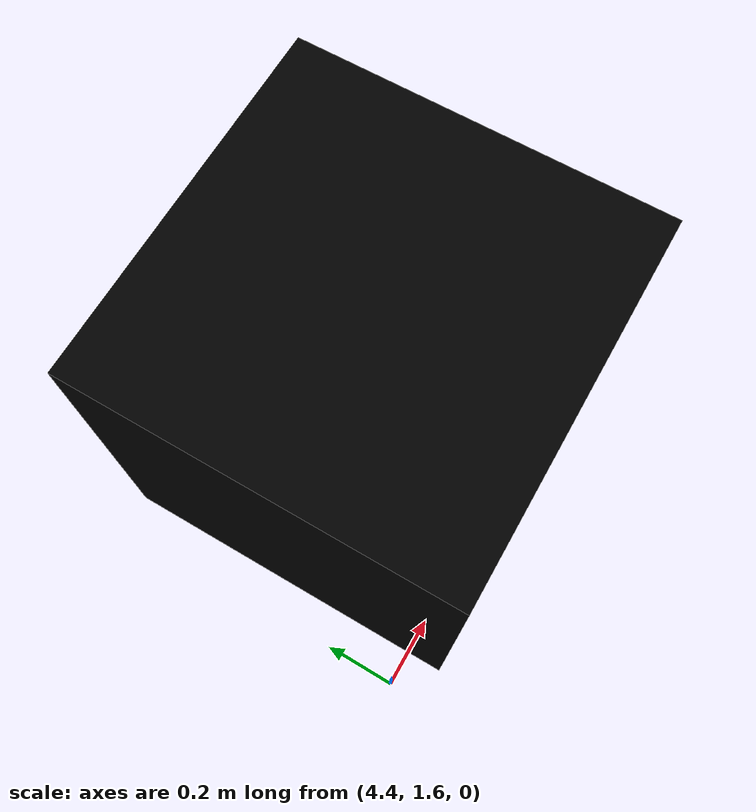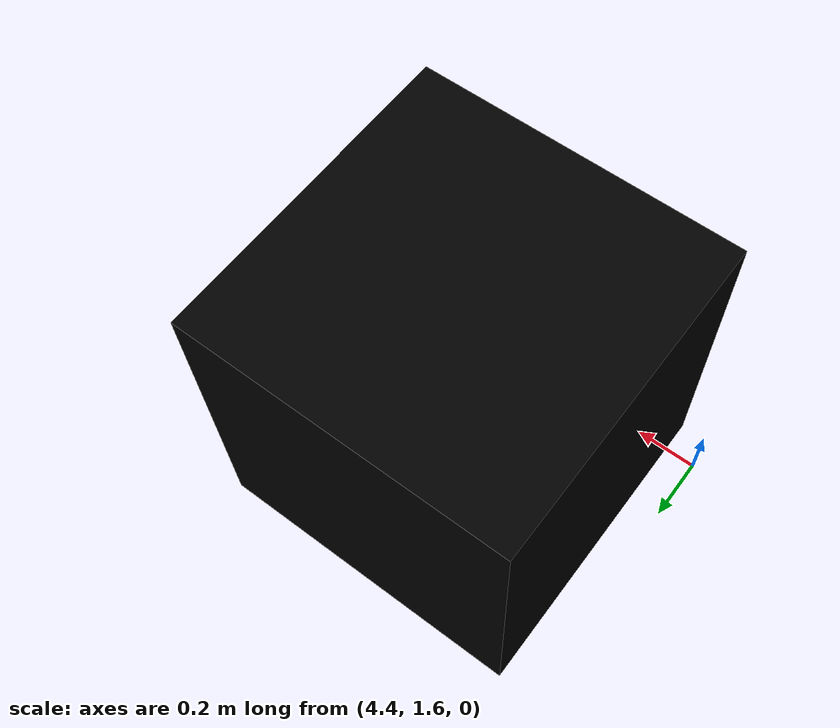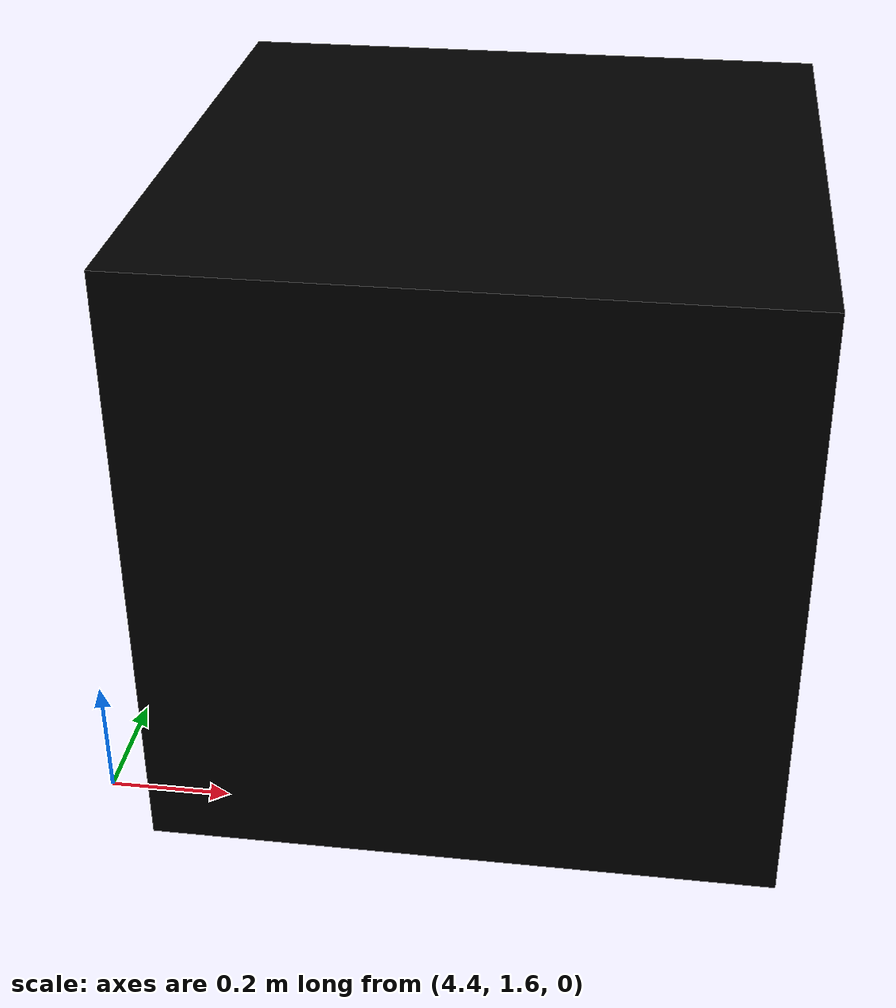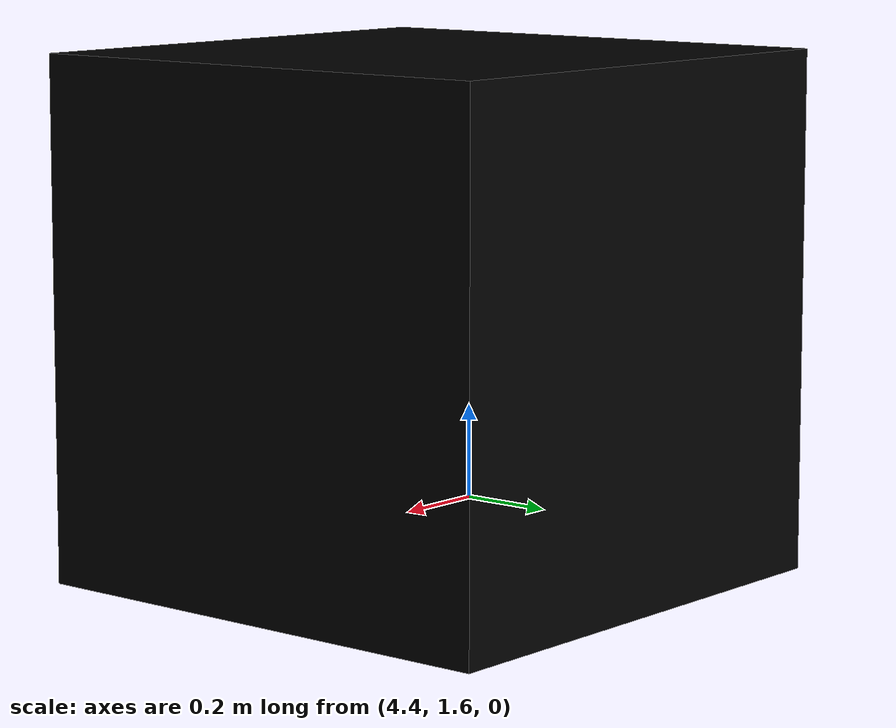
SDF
<?xml version="1.0" ?>
<sdf version="1.5">
  <model name="black_block2">
    <static>true</static>
    <!-- Pose: x y z roll pitch yaw (in meters/radians) -->
    <pose>5 2 0.5 0 0 0</pose>

    <plugin
      filename="gz-sim-odometry-publisher-system"
      name="gz::sim::systems::OdometryPublisher">
      <odom_publish_frequency>50</odom_publish_frequency>
      <dimensions>3</dimensions>

      <odom_frame>odom</odom_frame>
      <robot_base_frame>link</robot_base_frame>
    </plugin>

    <link name="link">
      <collision name="collision">
        <geometry>
          <box>
            <size>1 1 1</size>
          </box>
        </geometry>
      </collision>
      <visual name="visual">
        <geometry>
          <box>
            <size>1 1 1</size>
          </box>
        </geometry>
        <material>
          <ambient>0 0 0 1</ambient>
          <diffuse>0 0 0 1</diffuse>
          <specular>0.1 0.1 0.1 1</specular>
        </material>
      </visual>
    </link>
  </model>
</sdf>
